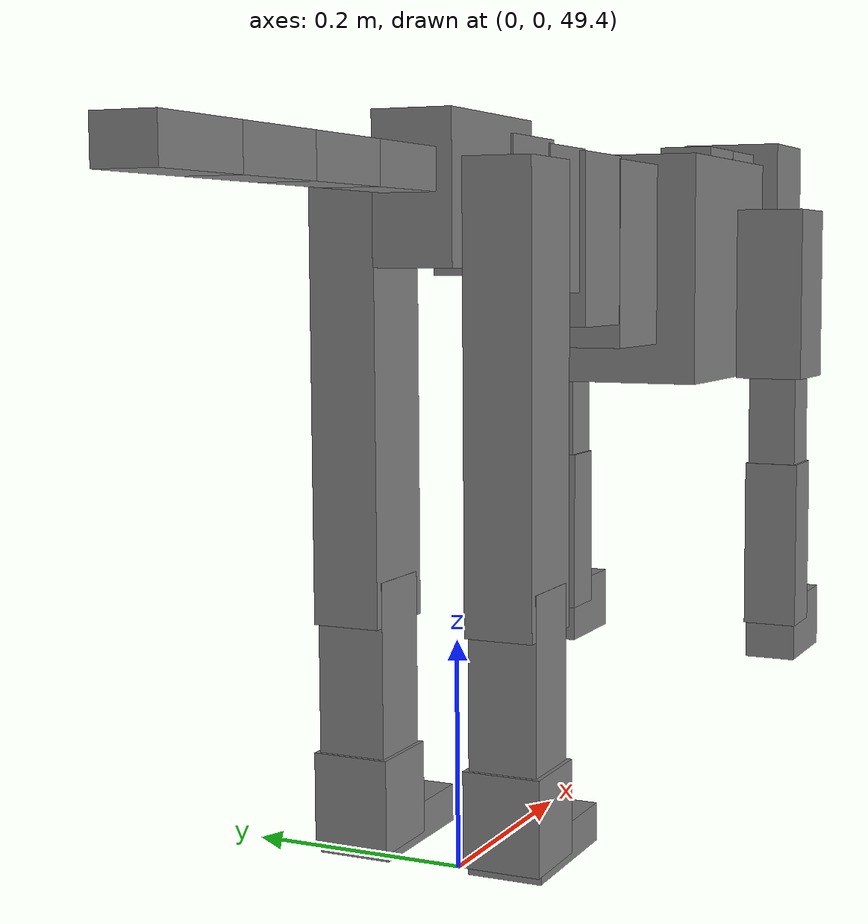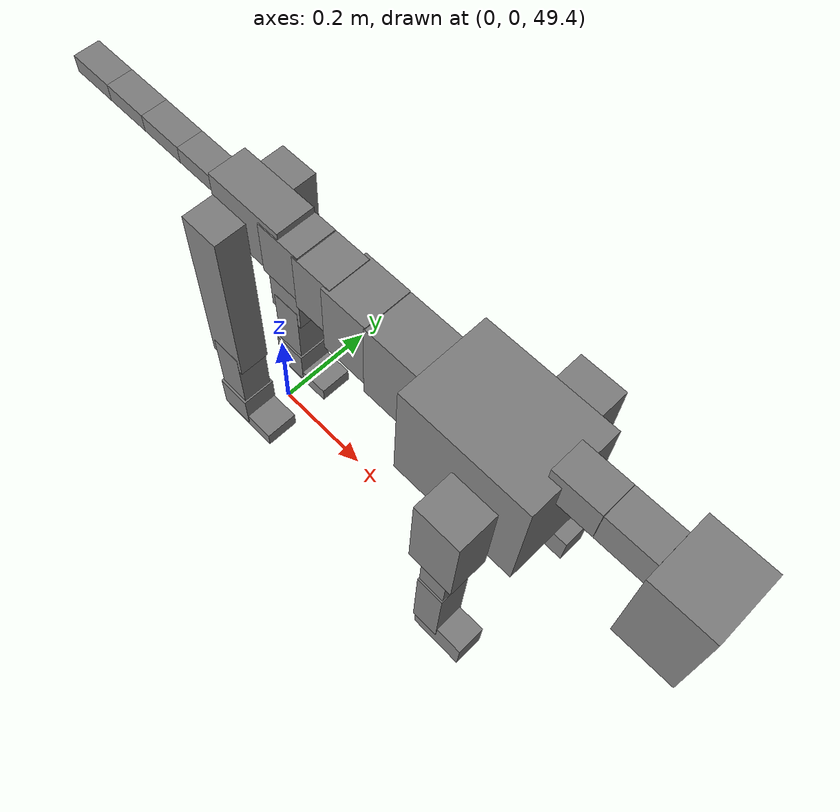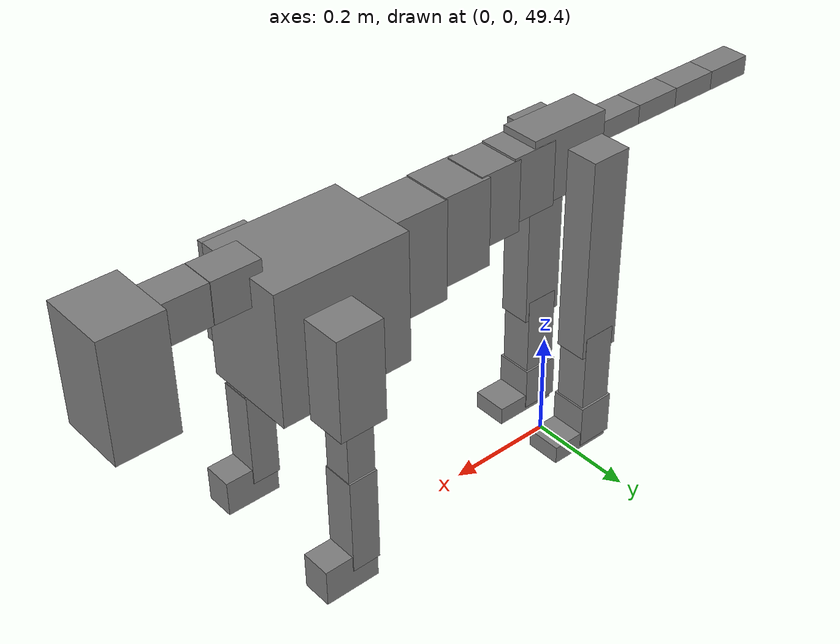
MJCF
<mujoco model="dog">

    <default>
        <joint armature="0.02" stiffness="1" damping="0.2" limited="true"/>
        <geom condim="3" friction="1 0.05 0.05" margin="0.01"/>
        <motor ctrllimited="true" ctrlrange="-1.0 1.0" forcelimited="true" gear="50"/>
    </default>

    <compiler inertiafromgeom="true" angle="radian"/>

    <option timestep="0.016" iterations="50" tolerance="1e-10" solver="Newton" jacobian="dense" cone="pyramidal"/>

    <size nconmax="20000" njmax="60000" nstack="5000000"/>
    <visual>
        <map force="0.1" zfar="30"/>
        <rgba haze="0.15 0.25 0.35 1"/>
        <quality shadowsize="2048"/>
        <global offwidth="800" offheight="800"/>
    </visual>

    <asset>
        <texture type="skybox" builtin="gradient" rgb1="0.3 0.5 0.7" rgb2="0 0 0" width="512" height="512"/>
        <texture name="texplane" type="2d" builtin="checker" rgb1=".2 .3 .4" rgb2=".1 0.15 0.2" width="512" height="512"
                 mark="cross" markrgb=".8 .8 .8"/>
        <texture name="texgeom" type="cube" builtin="flat" mark="cross" width="127" height="1278" rgb1="0.8 0.6 0.4"
                 rgb2="0.8 0.6 0.4" markrgb="1 1 1" random="0.01"/>

        <material name="matplane" reflectance="0.3" texture="texplane" texrepeat="1 1" texuniform="true"/>
        <material name="matgeom" texture="texgeom" texuniform="true" rgba="0.8 0.6 .4 1"/>
    </asset>

    <worldbody>
        <geom name="floor" pos="0 0 0" size="0 0 .25" type="plane" material="matplane" condim="3"/>

        <light directional="false" diffuse=".2 .2 .2" specular="0 0 0" pos="0 0 5" dir="0 0 -1" castshadow="false"/>
        <light mode="targetbodycom" target="torso" directional="false" diffuse=".8 .8 .8" specular="0.3 0.3 0.3"
               pos="0 0 4.0" dir="0 0 -1"/>

        <body name="root" pos="0 0 50">
            <freejoint name="root_1"/>
            <geom type="box" pos="0 0 -0.02" size="0.0774  0.0358  0.063" density="2030"/>

            <body name="spine1" pos="0.054 0 0">
                <joint name="spine1_y" axis="0 1 0" range="0 0.7" limited="true"/>
                <geom type="box" pos="0.02375 0 -0.03" size="0.04375  0.0375  0.05985" density="2030"/>

                <body name="spine2" pos="0.0612 0 0">
                    <joint name="spine2_y" axis="0 1 0" range="-0.15 0.15" limited="true"/>
                    <geom type="box" pos="0.03555  0  -0.04" size="0.04055  0.039  0.06615" density="2030"/>

                    <body name="spine3" pos="0.0730 0 0">
                        <joint name="spine3_y" axis="0 1 0" range="-0.15 0.15" limited="true"/>
                        <geom type="box" pos="0.03555  0  -0.057" size="0.04555  0.0445  0.081" density="2030"/>

                        <body name="spine4" pos="0.0780 0 0">
                            <joint name="spine4_y" axis="0 1 0" range="-0.15 0.15" limited="true"/>
                            <geom type="box" pos="0.05265  0  -0.07" size="0.05265  0.045  0.09135" density="2030"/>

                            <body name="torso" pos="0.1082 0 0">
                                <joint name="torso_y" axis="0 1 0" range="-0.15 0.15" limited="true"/>
                                <geom type="box" pos="0.11925  0  -0.085" size="0.11925  0.085  0.11745"
                                      density="2030"/>

                                <body name="neck1" pos="0.2160  0   0.0180">
                                    <joint name="neck1_y" axis="0 1 0" range="-1.2  -1" limited="true"/>
                                    <geom type="box" pos="0.0423  0  0" size="0.0423  0.03  0.036" density="2325"/>

                                    <body name="neck2" pos="0.0853  0  0">
                                        <joint name="neck2_y" axis="0 1 0" range="0.1  0" limited="true"/>
                                        <geom type="box" pos="0.0423  0  0" size="0.0423  0.03  0.036" density="2325"/>

                                        <body name="head" pos="0.0853  0  0">
                                            <joint name="head_y" axis="0 1 0" range="-0.3  -0.2" limited="true"/>
                                            <geom type="box" pos="0.0531  0  -0.055" size="0.0531  0.06  0.1044"
                                                  density="4030"/>

                                        </body>
                                    </body>
                                </body>

                                <body name="front_shoulder" pos="0.156  0   -0.0480">
                                    <joint name="front_shoulder_y" axis="0 1 0" range="-1 1.5" limited="true"/>
                                    <geom type="box" pos="0 0.13 -0.0637" size="0.0419  0.0358  0.0904" density="1158"/>
                                    <geom type="box" pos="0 -0.13 -0.0637" size="0.0419  0.0358  0.0904"
                                          density="1158"/>

                                    <body name="front_elbow" pos="0  0  -0.1274">
                                        <joint name="front_elbow_y" axis="0 1 0" range="-2 0" limited="true"/>
                                        <geom type="box" pos="0 0.13 -0.0668" size="0.0249  0.0255  0.0668"
                                              density="1081"/>
                                        <geom type="box" pos="0 -0.13 -0.0668" size="0.0249  0.0255  0.0668"
                                              density="1081"/>

                                        <body name="front_wrist" pos="0  0  -0.1337">
                                            <joint name="front_wrist_y" axis="0 1 0" range="-0.2 0" limited="true"/>
                                            <geom type="box" pos="0 0.13 -0.0753" size="0.0258  0.0286  0.0885"
                                                  density="1664"/>
                                            <geom type="box" pos="0 -0.13 -0.0753" size="0.0258  0.0286  0.0885"
                                                  density="1664"/>

                                            <body name="front_finger_end" pos="0  0  -0.1506">
                                                <joint name="front_finger_y" axis="0 1 0" range="-0.4 1"
                                                       limited="true"/>
                                                <geom type="box" pos="0.0270  0.13  -0.0183"
                                                      size="0.0495  0.0270  0.0333" density="1515"/>
                                                <geom type="box" pos="0.0270  -0.13  -0.0183"
                                                      size="0.0495  0.0270  0.0333" density="1515"/>

                                            </body>

                                        </body>
                                    </body>
                                </body>

                            </body>
                        </body>
                    </body>
                </body>
            </body>

            <body name="back_hip" pos="-0.03 0 -0.018">
                <joint name="back_hip_y" axis="0 1 0" range="-1.5 0.3" limited="true"/>
                <geom type="box" pos="0 0.07 -0.1704" size="0.0382  0.0300  0.1932" density="1154"/>
                <geom type="box" pos="0 -0.07 -0.1704" size="0.0382  0.0300  0.1932" density="1154"/>

                <body name="back_knee" pos="0  0  -0.3408">
                    <joint name="back_knee_y" axis="0 1 0" range="0 2.8" limited="true"/>
                    <geom type="box" pos="0 0.07 -0.0728" size="0.0308  0.0303  0.0884" density="1227"/>
                    <geom type="box" pos="0 -0.07 -0.0728" size="0.0308  0.0303  0.0884" density="1227"/>

                    <body name="back_ankle" pos="0  0  -0.1457">
                        <joint name="back_ankle_y" axis="0 1 0" range="-2.2 0" limited="true"/>
                        <geom type="box" pos="0 0.07 -0.0293" size="0.0342  0.0342  0.0406" density="1284"/>
                        <geom type="box" pos="0 -0.07 -0.0293" size="0.0342  0.0342  0.0406" density="1284"/>

                        <body name="back_toe_end" pos="0  0  -0.0587">
                            <joint name="back_toe_y" axis="0 1 0" range="-0.4 1" limited="true"/>
                            <geom type="box" pos="0.0329  0.07  -0.0019" size="0.0604  0.0329  0.0169" density="1515"/>
                            <geom type="box" pos="0.0329  -0.07  -0.0019" size="0.0604  0.0329  0.0169" density="1515"/>

                        </body>
                    </body>
                </body>
            </body>

            <body name="tail1" pos="-0.074 0 -0.006">
                <joint name="tail1_y" axis="0 1 0" range="-0.2 0.2" limited="true"/>
                <geom type="box" pos="-0.0536  0  0" size="0.045  0.025  0.0175" density="1587"/>

                <body name="tail2" pos="-0.09 0 0">
                    <joint name="tail2_y" axis="0 1 0" range="-0.2 0.2" limited="true"/>
                    <geom type="box" pos="-0.0536  0  0" size="0.045  0.025  0.0175" density="1587"/>

                    <body name="tail3" pos="-0.09 0 0">
                        <joint name="tail3_y" axis="0 1 0" range="-0.2 0.2" limited="true"/>
                        <geom type="box" pos="-0.0536  0  0" size="0.045  0.025  0.0175" density="1587"/>

                        <body name="tail4" pos="-0.09 0 0">
                            <joint name="tail4_y" axis="0 1 0" range="-0.2 0.2" limited="true"/>
                            <geom type="box" pos="-0.0536  0  0" size="0.045  0.025  0.0175" density="1587"/>

                        </body>
                    </body>
                </body>
            </body>
        </body>
    </worldbody>

    <actuator>
        <motor joint="spine1_y" forcerange="-150 150     "/>
        <motor joint="spine2_y" forcerange="-150 150     "/>
        <motor joint="spine3_y" forcerange="-150 150     "/>
        <motor joint="spine4_y" forcerange="-150 150     "/>
        <motor joint="torso_y" forcerange="-150 150     "/>
        <motor joint="neck1_y" forcerange="-100 100       "/>
        <motor joint="neck2_y" forcerange="-100 100       "/>
        <motor joint="head_y" forcerange="-150 150       "/>
        <motor joint="front_shoulder_y" forcerange="-179.41 159.06"/>
        <motor joint="front_elbow_y" forcerange="-160.56 124.58"/>
        <motor joint="front_wrist_y" forcerange="-145.26 83.92"/>
        <motor joint="front_finger_y" forcerange="-51.39 52.72"/>
        <motor joint="back_hip_y" forcerange="-396.46 203.10"/>
        <motor joint="back_knee_y" forcerange="-347.37 294.00"/>
        <motor joint="back_angle_y" forcerange="-230.59 216.49"/>
        <motor joint="back_toe_y" forcerange="-63.50 119.99"/>
        <motor joint="tail1_y" forcerange="-50 50     "/>
        <motor joint="tail2_y" forcerange="-50 50     "/>
        <motor joint="tail3_y" forcerange="-50 50     "/>
        <motor joint="tail4_y" forcerange="-50 50     "/>
    </actuator>
</mujoco>
